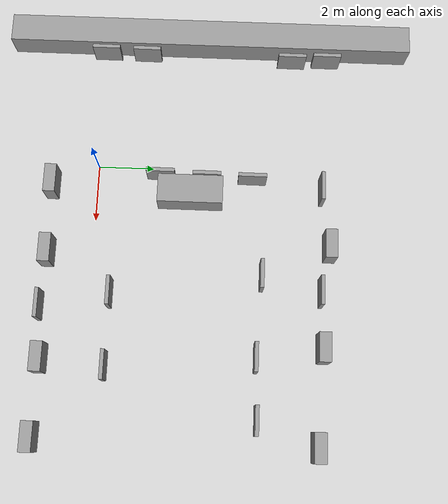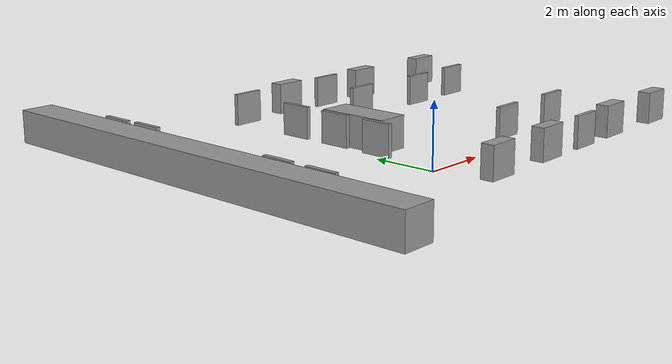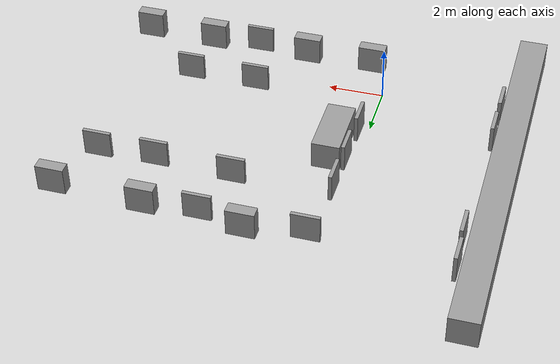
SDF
<sdf version="1.6">
 <world name="default">
  <model name="ground">
   <link name="body">
    <collision name="geom">
     <geometry><plane><normal>0 0 1</normal><size>1000 1000</size></plane></geometry>
     <surface><friction><ode><mu>100</mu><mu2>50</mu2></ode></friction></surface>
    </collision>
   </link>
   <static>1</static>
  </model>
  <model name="unit_box">
   <link name="link">
    <inertial>
     <mass>1</mass>
     <inertia>
      <ixx>0.166667</ixx>
      <ixy>0</ixy>
      <ixz>0</ixz>
      <iyy>0.166667</iyy>
      <iyz>0</iyz>
      <izz>0.166667</izz>
     </inertia>
    </inertial>
    <visual name="visual">
     <geometry><box><size>1 14.6124 1</size></box></geometry>
     <material>
      <script><name>Gazebo/Grey</name><uri>file://media/materials/scripts/gazebo.material</uri></script>
      <shader type="pixel"/>
      <ambient>0.3 0.3 0.3 1</ambient>
      <diffuse>0.7 0.7 0.7 1</diffuse>
      <specular>0.01 0.01 0.01 1</specular>
      <emissive>0 0 0 1</emissive>
     </material>
    </visual>
    <collision name="collision">
     <geometry><box><size>1 14.6124 1</size></box></geometry>
     <surface>
      <friction>
       <ode><mu>1</mu><mu2>1</mu2><fdir1>0 0 0</fdir1><slip1>0</slip1><slip2>0</slip2></ode>
       <torsional>
        <coefficient>1</coefficient>
        <patch_radius>0</patch_radius>
        <surface_radius>0</surface_radius>
        <use_patch_radius>1</use_patch_radius>
        <ode><slip>0</slip></ode>
       </torsional>
      </friction>
      <bounce><restitution_coefficient>0</restitution_coefficient><threshold>1e+06</threshold></bounce>
      <contact>
       <collide_without_contact>0</collide_without_contact>
       <collide_without_contact_bitmask>1</collide_without_contact_bitmask>
       <collide_bitmask>1</collide_bitmask>
       <ode>
        <soft_cfm>0</soft_cfm>
        <soft_erp>0.2</soft_erp>
        <kp>1e+13</kp>
        <kd>1</kd>
        <max_vel>0.01</max_vel>
        <min_depth>0</min_depth>
       </ode>
       <bullet>
        <split_impulse>1</split_impulse>
        <split_impulse_penetration_threshold>-0.01</split_impulse_penetration_threshold>
        <soft_cfm>0</soft_cfm>
        <soft_erp>0.2</soft_erp>
        <kp>1e+13</kp>
        <kd>1</kd>
       </bullet>
      </contact>
     </surface>
    </collision>
   </link>
   <static>1</static>
   <pose>-5.00918 3.85436 0.5 0 -0 0</pose>
  </model>
  <model name="unit_box_1_clone_0_clone">
   <link name="link">
    <inertial>
     <mass>1</mass>
     <inertia>
      <ixx>0.166667</ixx>
      <ixy>0</ixy>
      <ixz>0</ixz>
      <iyy>0.166667</iyy>
      <iyz>0</iyz>
      <izz>0.166667</izz>
     </inertia>
    </inertial>
    <visual name="visual">
     <geometry><box><size>1 0.413614 1</size></box></geometry>
     <material>
      <script><name>Gazebo/Grey</name><uri>file://media/materials/scripts/gazebo.material</uri></script>
      <shader type="pixel"/>
      <ambient>0.3 0.3 0.3 1</ambient>
      <diffuse>0.7 0.7 0.7 1</diffuse>
      <specular>0.01 0.01 0.01 1</specular>
      <emissive>0 0 0 1</emissive>
     </material>
    </visual>
    <collision name="collision">
     <geometry><box><size>1 0.413614 1</size></box></geometry>
     <surface>
      <friction>
       <ode><mu>1</mu><mu2>1</mu2><fdir1>0 0 0</fdir1><slip1>0</slip1><slip2>0</slip2></ode>
       <torsional>
        <coefficient>1</coefficient>
        <patch_radius>0</patch_radius>
        <surface_radius>0</surface_radius>
        <use_patch_radius>1</use_patch_radius>
        <ode><slip>0</slip></ode>
       </torsional>
      </friction>
      <bounce><restitution_coefficient>0</restitution_coefficient><threshold>1e+06</threshold></bounce>
      <contact>
       <collide_without_contact>0</collide_without_contact>
       <collide_without_contact_bitmask>1</collide_without_contact_bitmask>
       <collide_bitmask>1</collide_bitmask>
       <ode>
        <soft_cfm>0</soft_cfm>
        <soft_erp>0.2</soft_erp>
        <kp>1e+13</kp>
        <kd>1</kd>
        <max_vel>0.01</max_vel>
        <min_depth>0</min_depth>
       </ode>
       <bullet>
        <split_impulse>1</split_impulse>
        <split_impulse_penetration_threshold>-0.01</split_impulse_penetration_threshold>
        <soft_cfm>0</soft_cfm>
        <soft_erp>0.2</soft_erp>
        <kp>1e+13</kp>
        <kd>1</kd>
       </bullet>
      </contact>
     </surface>
    </collision>
   </link>
   <static>1</static>
   <pose>2.76595 8.31502 0.500033 1e-05 -0 0</pose>
  </model>
  <model name="unit_box_1_clone_0_clone_0">
   <link name="link">
    <inertial>
     <mass>1</mass>
     <inertia>
      <ixx>0.166667</ixx>
      <ixy>0</ixy>
      <ixz>0</ixz>
      <iyy>0.166667</iyy>
      <iyz>0</iyz>
      <izz>0.166667</izz>
     </inertia>
    </inertial>
    <visual name="visual">
     <geometry><box><size>1 0.413614 1</size></box></geometry>
     <material>
      <script><name>Gazebo/Grey</name><uri>file://media/materials/scripts/gazebo.material</uri></script>
      <shader type="pixel"/>
      <ambient>0.3 0.3 0.3 1</ambient>
      <diffuse>0.7 0.7 0.7 1</diffuse>
      <specular>0.01 0.01 0.01 1</specular>
      <emissive>0 0 0 1</emissive>
     </material>
    </visual>
    <collision name="collision">
     <geometry><box><size>1 0.413614 1</size></box></geometry>
     <surface>
      <friction>
       <ode><mu>1</mu><mu2>1</mu2><fdir1>0 0 0</fdir1><slip1>0</slip1><slip2>0</slip2></ode>
       <torsional>
        <coefficient>1</coefficient>
        <patch_radius>0</patch_radius>
        <surface_radius>0</surface_radius>
        <use_patch_radius>1</use_patch_radius>
        <ode><slip>0</slip></ode>
       </torsional>
      </friction>
      <bounce><restitution_coefficient>0</restitution_coefficient><threshold>1e+06</threshold></bounce>
      <contact>
       <collide_without_contact>0</collide_without_contact>
       <collide_without_contact_bitmask>1</collide_without_contact_bitmask>
       <collide_bitmask>1</collide_bitmask>
       <ode>
        <soft_cfm>0</soft_cfm>
        <soft_erp>0.2</soft_erp>
        <kp>1e+13</kp>
        <kd>1</kd>
        <max_vel>0.01</max_vel>
        <min_depth>0</min_depth>
       </ode>
       <bullet>
        <split_impulse>1</split_impulse>
        <split_impulse_penetration_threshold>-0.01</split_impulse_penetration_threshold>
        <soft_cfm>0</soft_cfm>
        <soft_erp>0.2</soft_erp>
        <kp>1e+13</kp>
        <kd>1</kd>
       </bullet>
      </contact>
     </surface>
    </collision>
   </link>
   <static>1</static>
   <pose>0.76029 -1.57543 0.500034 1e-05 -0 0</pose>
  </model>
  <model name="unit_box_1_clone_0_clone_1">
   <link name="link">
    <inertial>
     <mass>1</mass>
     <inertia>
      <ixx>0.166667</ixx>
      <ixy>0</ixy>
      <ixz>0</ixz>
      <iyy>0.166667</iyy>
      <iyz>0</iyz>
      <izz>0.166667</izz>
     </inertia>
    </inertial>
    <visual name="visual">
     <geometry><box><size>1 0.413614 1</size></box></geometry>
     <material>
      <script><name>Gazebo/Grey</name><uri>file://media/materials/scripts/gazebo.material</uri></script>
      <shader type="pixel"/>
      <ambient>0.3 0.3 0.3 1</ambient>
      <diffuse>0.7 0.7 0.7 1</diffuse>
      <specular>0.01 0.01 0.01 1</specular>
      <emissive>0 0 0 1</emissive>
     </material>
    </visual>
    <collision name="collision">
     <geometry><box><size>1 0.413614 1</size></box></geometry>
     <surface>
      <friction>
       <ode><mu>1</mu><mu2>1</mu2><fdir1>0 0 0</fdir1><slip1>0</slip1><slip2>0</slip2></ode>
       <torsional>
        <coefficient>1</coefficient>
        <patch_radius>0</patch_radius>
        <surface_radius>0</surface_radius>
        <use_patch_radius>1</use_patch_radius>
        <ode><slip>0</slip></ode>
       </torsional>
      </friction>
      <bounce><restitution_coefficient>0</restitution_coefficient><threshold>1e+06</threshold></bounce>
      <contact>
       <collide_without_contact>0</collide_without_contact>
       <collide_without_contact_bitmask>1</collide_without_contact_bitmask>
       <collide_bitmask>1</collide_bitmask>
       <ode>
        <soft_cfm>0</soft_cfm>
        <soft_erp>0.2</soft_erp>
        <kp>1e+13</kp>
        <kd>1</kd>
        <max_vel>0.01</max_vel>
        <min_depth>0</min_depth>
       </ode>
       <bullet>
        <split_impulse>1</split_impulse>
        <split_impulse_penetration_threshold>-0.01</split_impulse_penetration_threshold>
        <soft_cfm>0</soft_cfm>
        <soft_erp>0.2</soft_erp>
        <kp>1e+13</kp>
        <kd>1</kd>
       </bullet>
      </contact>
     </surface>
    </collision>
   </link>
   <static>1</static>
   <pose>3.25411 -1.54906 0.500034 1e-05 -0 0</pose>
  </model>
  <model name="unit_box_1_clone_0_clone_2">
   <link name="link">
    <inertial>
     <mass>1</mass>
     <inertia>
      <ixx>0.166667</ixx>
      <ixy>0</ixy>
      <ixz>0</ixz>
      <iyy>0.166667</iyy>
      <iyz>0</iyz>
      <izz>0.166667</izz>
     </inertia>
    </inertial>
    <visual name="visual">
     <geometry><box><size>1 0.413614 1</size></box></geometry>
     <material>
      <script><name>Gazebo/Grey</name><uri>file://media/materials/scripts/gazebo.material</uri></script>
      <shader type="pixel"/>
      <ambient>0.3 0.3 0.3 1</ambient>
      <diffuse>0.7 0.7 0.7 1</diffuse>
      <specular>0.01 0.01 0.01 1</specular>
      <emissive>0 0 0 1</emissive>
     </material>
    </visual>
    <collision name="collision">
     <geometry><box><size>1 0.413614 1</size></box></geometry>
     <surface>
      <friction>
       <ode><mu>1</mu><mu2>1</mu2><fdir1>0 0 0</fdir1><slip1>0</slip1><slip2>0</slip2></ode>
       <torsional>
        <coefficient>1</coefficient>
        <patch_radius>0</patch_radius>
        <surface_radius>0</surface_radius>
        <use_patch_radius>1</use_patch_radius>
        <ode><slip>0</slip></ode>
       </torsional>
      </friction>
      <bounce><restitution_coefficient>0</restitution_coefficient><threshold>1e+06</threshold></bounce>
      <contact>
       <collide_without_contact>0</collide_without_contact>
       <collide_without_contact_bitmask>1</collide_without_contact_bitmask>
       <collide_bitmask>1</collide_bitmask>
       <ode>
        <soft_cfm>0</soft_cfm>
        <soft_erp>0.2</soft_erp>
        <kp>1e+13</kp>
        <kd>1</kd>
        <max_vel>0.01</max_vel>
        <min_depth>0</min_depth>
       </ode>
       <bullet>
        <split_impulse>1</split_impulse>
        <split_impulse_penetration_threshold>-0.01</split_impulse_penetration_threshold>
        <soft_cfm>0</soft_cfm>
        <soft_erp>0.2</soft_erp>
        <kp>1e+13</kp>
        <kd>1</kd>
       </bullet>
      </contact>
     </surface>
    </collision>
   </link>
   <static>1</static>
   <pose>6.96561 -1.50266 0.500035 1e-05 -0 0</pose>
  </model>
  <model name="unit_box_1_clone_0_clone_3">
   <link name="link">
    <inertial>
     <mass>1</mass>
     <inertia>
      <ixx>0.166667</ixx>
      <ixy>0</ixy>
      <ixz>0</ixz>
      <iyy>0.166667</iyy>
      <iyz>0</iyz>
      <izz>0.166667</izz>
     </inertia>
    </inertial>
    <visual name="visual">
     <geometry><box><size>1 0.413614 1</size></box></geometry>
     <material>
      <script><name>Gazebo/Grey</name><uri>file://media/materials/scripts/gazebo.material</uri></script>
      <shader type="pixel"/>
      <ambient>0.3 0.3 0.3 1</ambient>
      <diffuse>0.7 0.7 0.7 1</diffuse>
      <specular>0.01 0.01 0.01 1</specular>
      <emissive>0 0 0 1</emissive>
     </material>
    </visual>
    <collision name="collision">
     <geometry><box><size>1 0.413614 1</size></box></geometry>
     <surface>
      <friction>
       <ode><mu>1</mu><mu2>1</mu2><fdir1>0 0 0</fdir1><slip1>0</slip1><slip2>0</slip2></ode>
       <torsional>
        <coefficient>1</coefficient>
        <patch_radius>0</patch_radius>
        <surface_radius>0</surface_radius>
        <use_patch_radius>1</use_patch_radius>
        <ode><slip>0</slip></ode>
       </torsional>
      </friction>
      <bounce><restitution_coefficient>0</restitution_coefficient><threshold>1e+06</threshold></bounce>
      <contact>
       <collide_without_contact>0</collide_without_contact>
       <collide_without_contact_bitmask>1</collide_without_contact_bitmask>
       <collide_bitmask>1</collide_bitmask>
       <ode>
        <soft_cfm>0</soft_cfm>
        <soft_erp>0.2</soft_erp>
        <kp>1e+13</kp>
        <kd>1</kd>
        <max_vel>0.01</max_vel>
        <min_depth>0</min_depth>
       </ode>
       <bullet>
        <split_impulse>1</split_impulse>
        <split_impulse_penetration_threshold>-0.01</split_impulse_penetration_threshold>
        <soft_cfm>0</soft_cfm>
        <soft_erp>0.2</soft_erp>
        <kp>1e+13</kp>
        <kd>1</kd>
       </bullet>
      </contact>
     </surface>
    </collision>
   </link>
   <static>1</static>
   <pose>9.54835 -1.57303 0.500034 1e-05 -0 0</pose>
  </model>
  <model name="unit_box_1_clone_0_clone_5">
   <link name="link">
    <inertial>
     <mass>1</mass>
     <inertia>
      <ixx>0.166667</ixx>
      <ixy>0</ixy>
      <ixz>0</ixz>
      <iyy>0.166667</iyy>
      <iyz>0</iyz>
      <izz>0.166667</izz>
     </inertia>
    </inertial>
    <visual name="visual">
     <geometry><box><size>1 0.413614 1</size></box></geometry>
     <material>
      <script><name>Gazebo/Grey</name><uri>file://media/materials/scripts/gazebo.material</uri></script>
      <shader type="pixel"/>
      <ambient>0.3 0.3 0.3 1</ambient>
      <diffuse>0.7 0.7 0.7 1</diffuse>
      <specular>0.01 0.01 0.01 1</specular>
      <emissive>0 0 0 1</emissive>
     </material>
    </visual>
    <collision name="collision">
     <geometry><box><size>1 0.413614 1</size></box></geometry>
     <surface>
      <friction>
       <ode><mu>1</mu><mu2>1</mu2><fdir1>0 0 0</fdir1><slip1>0</slip1><slip2>0</slip2></ode>
       <torsional>
        <coefficient>1</coefficient>
        <patch_radius>0</patch_radius>
        <surface_radius>0</surface_radius>
        <use_patch_radius>1</use_patch_radius>
        <ode><slip>0</slip></ode>
       </torsional>
      </friction>
      <bounce><restitution_coefficient>0</restitution_coefficient><threshold>1e+06</threshold></bounce>
      <contact>
       <collide_without_contact>0</collide_without_contact>
       <collide_without_contact_bitmask>1</collide_without_contact_bitmask>
       <collide_bitmask>1</collide_bitmask>
       <ode>
        <soft_cfm>0</soft_cfm>
        <soft_erp>0.2</soft_erp>
        <kp>1e+13</kp>
        <kd>1</kd>
        <max_vel>0.01</max_vel>
        <min_depth>0</min_depth>
       </ode>
       <bullet>
        <split_impulse>1</split_impulse>
        <split_impulse_penetration_threshold>-0.01</split_impulse_penetration_threshold>
        <soft_cfm>0</soft_cfm>
        <soft_erp>0.2</soft_erp>
        <kp>1e+13</kp>
        <kd>1</kd>
       </bullet>
      </contact>
     </surface>
    </collision>
   </link>
   <static>1</static>
   <pose>6.3125 8.09635 0.500032 1e-05 -0 0</pose>
  </model>
  <model name="unit_box_1_clone_0_clone_6">
   <link name="link">
    <inertial>
     <mass>1</mass>
     <inertia>
      <ixx>0.166667</ixx>
      <ixy>0</ixy>
      <ixz>0</ixz>
      <iyy>0.166667</iyy>
      <iyz>0</iyz>
      <izz>0.166667</izz>
     </inertia>
    </inertial>
    <visual name="visual">
     <geometry><box><size>1 0.413614 1</size></box></geometry>
     <material>
      <script><name>Gazebo/Grey</name><uri>file://media/materials/scripts/gazebo.material</uri></script>
      <shader type="pixel"/>
      <ambient>0.3 0.3 0.3 1</ambient>
      <diffuse>0.7 0.7 0.7 1</diffuse>
      <specular>0.01 0.01 0.01 1</specular>
      <emissive>0 0 0 1</emissive>
     </material>
    </visual>
    <collision name="collision">
     <geometry><box><size>1 0.413614 1</size></box></geometry>
     <surface>
      <friction>
       <ode><mu>1</mu><mu2>1</mu2><fdir1>0 0 0</fdir1><slip1>0</slip1><slip2>0</slip2></ode>
       <torsional>
        <coefficient>1</coefficient>
        <patch_radius>0</patch_radius>
        <surface_radius>0</surface_radius>
        <use_patch_radius>1</use_patch_radius>
        <ode><slip>0</slip></ode>
       </torsional>
      </friction>
      <bounce><restitution_coefficient>0</restitution_coefficient><threshold>1e+06</threshold></bounce>
      <contact>
       <collide_without_contact>0</collide_without_contact>
       <collide_without_contact_bitmask>1</collide_without_contact_bitmask>
       <collide_bitmask>1</collide_bitmask>
       <ode>
        <soft_cfm>0</soft_cfm>
        <soft_erp>0.2</soft_erp>
        <kp>1e+13</kp>
        <kd>1</kd>
        <max_vel>0.01</max_vel>
        <min_depth>0</min_depth>
       </ode>
       <bullet>
        <split_impulse>1</split_impulse>
        <split_impulse_penetration_threshold>-0.01</split_impulse_penetration_threshold>
        <soft_cfm>0</soft_cfm>
        <soft_erp>0.2</soft_erp>
        <kp>1e+13</kp>
        <kd>1</kd>
       </bullet>
      </contact>
     </surface>
    </collision>
   </link>
   <static>1</static>
   <pose>9.55963 7.943 0.50003 1e-05 -0 0</pose>
  </model>
  <model name="unit_box_1_clone_0_clone_16_clone">
   <link name="link">
    <inertial>
     <mass>1</mass>
     <inertia>
      <ixx>0.166667</ixx>
      <ixy>0</ixy>
      <ixz>0</ixz>
      <iyy>0.166667</iyy>
      <iyz>0</iyz>
      <izz>0.166667</izz>
     </inertia>
    </inertial>
    <visual name="visual">
     <geometry><box><size>1 0.12971 1</size></box></geometry>
     <material>
      <script><name>Gazebo/Grey</name><uri>file://media/materials/scripts/gazebo.material</uri></script>
      <shader type="pixel"/>
      <ambient>0.3 0.3 0.3 1</ambient>
      <diffuse>0.7 0.7 0.7 1</diffuse>
      <specular>0.01 0.01 0.01 1</specular>
      <emissive>0 0 0 1</emissive>
     </material>
    </visual>
    <collision name="collision">
     <geometry><box><size>1 0.12971 1</size></box></geometry>
     <surface>
      <friction>
       <ode><mu>1</mu><mu2>1</mu2><fdir1>0 0 0</fdir1><slip1>0</slip1><slip2>0</slip2></ode>
       <torsional>
        <coefficient>1</coefficient>
        <patch_radius>0</patch_radius>
        <surface_radius>0</surface_radius>
        <use_patch_radius>1</use_patch_radius>
        <ode><slip>0</slip></ode>
       </torsional>
      </friction>
      <bounce><restitution_coefficient>0</restitution_coefficient><threshold>1e+06</threshold></bounce>
      <contact>
       <collide_without_contact>0</collide_without_contact>
       <collide_without_contact_bitmask>1</collide_without_contact_bitmask>
       <collide_bitmask>1</collide_bitmask>
       <ode>
        <soft_cfm>0</soft_cfm>
        <soft_erp>0.2</soft_erp>
        <kp>1e+13</kp>
        <kd>1</kd>
        <max_vel>0.01</max_vel>
        <min_depth>0</min_depth>
       </ode>
       <bullet>
        <split_impulse>1</split_impulse>
        <split_impulse_penetration_threshold>-0.01</split_impulse_penetration_threshold>
        <soft_cfm>0</soft_cfm>
        <soft_erp>0.2</soft_erp>
        <kp>1e+13</kp>
        <kd>1</kd>
       </bullet>
      </contact>
     </surface>
    </collision>
   </link>
   <static>1</static>
   <pose>5.17154 -1.66149 0.500002 1e-05 -0 0</pose>
  </model>
  <model name="unit_box_1_clone_0_clone_16_clone_10">
   <link name="link">
    <inertial>
     <mass>1</mass>
     <inertia>
      <ixx>0.166667</ixx>
      <ixy>0</ixy>
      <ixz>0</ixz>
      <iyy>0.166667</iyy>
      <iyz>0</iyz>
      <izz>0.166667</izz>
     </inertia>
    </inertial>
    <visual name="visual">
     <geometry><box><size>1 0.12971 1</size></box></geometry>
     <material>
      <script><name>Gazebo/Grey</name><uri>file://media/materials/scripts/gazebo.material</uri></script>
      <shader type="pixel"/>
      <ambient>0.3 0.3 0.3 1</ambient>
      <diffuse>0.7 0.7 0.7 1</diffuse>
      <specular>0.01 0.01 0.01 1</specular>
      <emissive>0 0 0 1</emissive>
     </material>
    </visual>
    <collision name="collision">
     <geometry><box><size>1 0.12971 1</size></box></geometry>
     <surface>
      <friction>
       <ode><mu>1</mu><mu2>1</mu2><fdir1>0 0 0</fdir1><slip1>0</slip1><slip2>0</slip2></ode>
       <torsional>
        <coefficient>1</coefficient>
        <patch_radius>0</patch_radius>
        <surface_radius>0</surface_radius>
        <use_patch_radius>1</use_patch_radius>
        <ode><slip>0</slip></ode>
       </torsional>
      </friction>
      <bounce><restitution_coefficient>0</restitution_coefficient><threshold>1e+06</threshold></bounce>
      <contact>
       <collide_without_contact>0</collide_without_contact>
       <collide_without_contact_bitmask>1</collide_without_contact_bitmask>
       <collide_bitmask>1</collide_bitmask>
       <ode>
        <soft_cfm>0</soft_cfm>
        <soft_erp>0.2</soft_erp>
        <kp>1e+13</kp>
        <kd>1</kd>
        <max_vel>0.01</max_vel>
        <min_depth>0</min_depth>
       </ode>
       <bullet>
        <split_impulse>1</split_impulse>
        <split_impulse_penetration_threshold>-0.01</split_impulse_penetration_threshold>
        <soft_cfm>0</soft_cfm>
        <soft_erp>0.2</soft_erp>
        <kp>1e+13</kp>
        <kd>1</kd>
       </bullet>
      </contact>
     </surface>
    </collision>
   </link>
   <static>1</static>
   <pose>4.39016 8.01505 0.499997 1e-05 -0 0</pose>
  </model>
  <model name="unit_box_1_clone_0_clone_16_clone_11">
   <link name="link">
    <inertial>
     <mass>1</mass>
     <inertia>
      <ixx>0.166667</ixx>
      <ixy>0</ixy>
      <ixz>0</ixz>
      <iyy>0.166667</iyy>
      <iyz>0</iyz>
      <izz>0.166667</izz>
     </inertia>
    </inertial>
    <visual name="visual">
     <geometry><box><size>1 0.12971 1</size></box></geometry>
     <material>
      <script><name>Gazebo/Grey</name><uri>file://media/materials/scripts/gazebo.material</uri></script>
      <shader type="pixel"/>
      <ambient>0.3 0.3 0.3 1</ambient>
      <diffuse>0.7 0.7 0.7 1</diffuse>
      <specular>0.01 0.01 0.01 1</specular>
      <emissive>0 0 0 1</emissive>
     </material>
    </visual>
    <collision name="collision">
     <geometry><box><size>1 0.12971 1</size></box></geometry>
     <surface>
      <friction>
       <ode><mu>1</mu><mu2>1</mu2><fdir1>0 0 0</fdir1><slip1>0</slip1><slip2>0</slip2></ode>
       <torsional>
        <coefficient>1</coefficient>
        <patch_radius>0</patch_radius>
        <surface_radius>0</surface_radius>
        <use_patch_radius>1</use_patch_radius>
        <ode><slip>0</slip></ode>
       </torsional>
      </friction>
      <bounce><restitution_coefficient>0</restitution_coefficient><threshold>1e+06</threshold></bounce>
      <contact>
       <collide_without_contact>0</collide_without_contact>
       <collide_without_contact_bitmask>1</collide_without_contact_bitmask>
       <collide_bitmask>1</collide_bitmask>
       <ode>
        <soft_cfm>0</soft_cfm>
        <soft_erp>0.2</soft_erp>
        <kp>1e+13</kp>
        <kd>1</kd>
        <max_vel>0.01</max_vel>
        <min_depth>0</min_depth>
       </ode>
       <bullet>
        <split_impulse>1</split_impulse>
        <split_impulse_penetration_threshold>-0.01</split_impulse_penetration_threshold>
        <soft_cfm>0</soft_cfm>
        <soft_erp>0.2</soft_erp>
        <kp>1e+13</kp>
        <kd>1</kd>
       </bullet>
      </contact>
     </surface>
    </collision>
   </link>
   <static>1</static>
   <pose>0.69566 8.0281 0.499998 1e-05 -0 0</pose>
  </model>
  <model name="unit_box_1_clone_0_clone_16_clone_12">
   <link name="link">
    <inertial>
     <mass>1</mass>
     <inertia>
      <ixx>0.166667</ixx>
      <ixy>0</ixy>
      <ixz>0</ixz>
      <iyy>0.166667</iyy>
      <iyz>0</iyz>
      <izz>0.166667</izz>
     </inertia>
    </inertial>
    <visual name="visual">
     <geometry><box><size>1 0.12971 1</size></box></geometry>
     <material>
      <script><name>Gazebo/Grey</name><uri>file://media/materials/scripts/gazebo.material</uri></script>
      <shader type="pixel"/>
      <ambient>0.3 0.3 0.3 1</ambient>
      <diffuse>0.7 0.7 0.7 1</diffuse>
      <specular>0.01 0.01 0.01 1</specular>
      <emissive>0 0 0 1</emissive>
     </material>
    </visual>
    <collision name="collision">
     <geometry><box><size>1 0.12971 1</size></box></geometry>
     <surface>
      <friction>
       <ode><mu>1</mu><mu2>1</mu2><fdir1>0 0 0</fdir1><slip1>0</slip1><slip2>0</slip2></ode>
       <torsional>
        <coefficient>1</coefficient>
        <patch_radius>0</patch_radius>
        <surface_radius>0</surface_radius>
        <use_patch_radius>1</use_patch_radius>
        <ode><slip>0</slip></ode>
       </torsional>
      </friction>
      <bounce><restitution_coefficient>0</restitution_coefficient><threshold>1e+06</threshold></bounce>
      <contact>
       <collide_without_contact>0</collide_without_contact>
       <collide_without_contact_bitmask>1</collide_without_contact_bitmask>
       <collide_bitmask>1</collide_bitmask>
       <ode>
        <soft_cfm>0</soft_cfm>
        <soft_erp>0.2</soft_erp>
        <kp>1e+13</kp>
        <kd>1</kd>
        <max_vel>0.01</max_vel>
        <min_depth>0</min_depth>
       </ode>
       <bullet>
        <split_impulse>1</split_impulse>
        <split_impulse_penetration_threshold>-0.01</split_impulse_penetration_threshold>
        <soft_cfm>0</soft_cfm>
        <soft_erp>0.2</soft_erp>
        <kp>1e+13</kp>
        <kd>1</kd>
       </bullet>
      </contact>
     </surface>
    </collision>
   </link>
   <static>1</static>
   <pose>-4.23907 6.88956 0.500027 0 1e-05 -1.57561</pose>
  </model>
  <model name="unit_box_1_clone_0_clone_16_clone_12_clone">
   <link name="link">
    <inertial>
     <mass>1</mass>
     <inertia>
      <ixx>0.166667</ixx>
      <ixy>0</ixy>
      <ixz>0</ixz>
      <iyy>0.166667</iyy>
      <iyz>0</iyz>
      <izz>0.166667</izz>
     </inertia>
    </inertial>
    <visual name="visual">
     <geometry><box><size>1 0.12971 1</size></box></geometry>
     <material>
      <script><name>Gazebo/Grey</name><uri>file://media/materials/scripts/gazebo.material</uri></script>
      <shader type="pixel"/>
      <ambient>0.3 0.3 0.3 1</ambient>
      <diffuse>0.7 0.7 0.7 1</diffuse>
      <specular>0.01 0.01 0.01 1</specular>
      <emissive>0 0 0 1</emissive>
     </material>
    </visual>
    <collision name="collision">
     <geometry><box><size>1 0.12971 1</size></box></geometry>
     <surface>
      <friction>
       <ode><mu>1</mu><mu2>1</mu2><fdir1>0 0 0</fdir1><slip1>0</slip1><slip2>0</slip2></ode>
       <torsional>
        <coefficient>1</coefficient>
        <patch_radius>0</patch_radius>
        <surface_radius>0</surface_radius>
        <use_patch_radius>1</use_patch_radius>
        <ode><slip>0</slip></ode>
       </torsional>
      </friction>
      <bounce><restitution_coefficient>0</restitution_coefficient><threshold>1e+06</threshold></bounce>
      <contact>
       <collide_without_contact>0</collide_without_contact>
       <collide_without_contact_bitmask>1</collide_without_contact_bitmask>
       <collide_bitmask>1</collide_bitmask>
       <ode>
        <soft_cfm>0</soft_cfm>
        <soft_erp>0.2</soft_erp>
        <kp>1e+13</kp>
        <kd>1</kd>
        <max_vel>0.01</max_vel>
        <min_depth>0</min_depth>
       </ode>
       <bullet>
        <split_impulse>1</split_impulse>
        <split_impulse_penetration_threshold>-0.01</split_impulse_penetration_threshold>
        <soft_cfm>0</soft_cfm>
        <soft_erp>0.2</soft_erp>
        <kp>1e+13</kp>
        <kd>1</kd>
       </bullet>
      </contact>
     </surface>
    </collision>
   </link>
   <static>1</static>
   <pose>-4.35855 0.063122 0.500027 0 1e-05 -1.57561</pose>
  </model>
  <model name="unit_box_1_clone_0_clone_16_clone_12_clone_6">
   <link name="link">
    <inertial>
     <mass>1</mass>
     <inertia>
      <ixx>0.166667</ixx>
      <ixy>0</ixy>
      <ixz>0</ixz>
      <iyy>0.166667</iyy>
      <iyz>0</iyz>
      <izz>0.166667</izz>
     </inertia>
    </inertial>
    <visual name="visual">
     <geometry><box><size>1 0.12971 1</size></box></geometry>
     <material>
      <script><name>Gazebo/Grey</name><uri>file://media/materials/scripts/gazebo.material</uri></script>
      <shader type="pixel"/>
      <ambient>0.3 0.3 0.3 1</ambient>
      <diffuse>0.7 0.7 0.7 1</diffuse>
      <specular>0.01 0.01 0.01 1</specular>
      <emissive>0 0 0 1</emissive>
     </material>
    </visual>
    <collision name="collision">
     <geometry><box><size>1 0.12971 1</size></box></geometry>
     <surface>
      <friction>
       <ode><mu>1</mu><mu2>1</mu2><fdir1>0 0 0</fdir1><slip1>0</slip1><slip2>0</slip2></ode>
       <torsional>
        <coefficient>1</coefficient>
        <patch_radius>0</patch_radius>
        <surface_radius>0</surface_radius>
        <use_patch_radius>1</use_patch_radius>
        <ode><slip>0</slip></ode>
       </torsional>
      </friction>
      <bounce><restitution_coefficient>0</restitution_coefficient><threshold>1e+06</threshold></bounce>
      <contact>
       <collide_without_contact>0</collide_without_contact>
       <collide_without_contact_bitmask>1</collide_without_contact_bitmask>
       <collide_bitmask>1</collide_bitmask>
       <ode>
        <soft_cfm>0</soft_cfm>
        <soft_erp>0.2</soft_erp>
        <kp>1e+13</kp>
        <kd>1</kd>
        <max_vel>0.01</max_vel>
        <min_depth>0</min_depth>
       </ode>
       <bullet>
        <split_impulse>1</split_impulse>
        <split_impulse_penetration_threshold>-0.01</split_impulse_penetration_threshold>
        <soft_cfm>0</soft_cfm>
        <soft_erp>0.2</soft_erp>
        <kp>1e+13</kp>
        <kd>1</kd>
       </bullet>
      </contact>
     </surface>
    </collision>
   </link>
   <static>1</static>
   <pose>-4.34072 1.5573 0.500027 0 1e-05 -1.57561</pose>
  </model>
  <model name="unit_box_1_clone_0_clone_16_clone_12_clone_7">
   <link name="link">
    <inertial>
     <mass>1</mass>
     <inertia>
      <ixx>0.166667</ixx>
      <ixy>0</ixy>
      <ixz>0</ixz>
      <iyy>0.166667</iyy>
      <iyz>0</iyz>
      <izz>0.166667</izz>
     </inertia>
    </inertial>
    <visual name="visual">
     <geometry><box><size>1 0.12971 1</size></box></geometry>
     <material>
      <script><name>Gazebo/Grey</name><uri>file://media/materials/scripts/gazebo.material</uri></script>
      <shader type="pixel"/>
      <ambient>0.3 0.3 0.3 1</ambient>
      <diffuse>0.7 0.7 0.7 1</diffuse>
      <specular>0.01 0.01 0.01 1</specular>
      <emissive>0 0 0 1</emissive>
     </material>
    </visual>
    <collision name="collision">
     <geometry><box><size>1 0.12971 1</size></box></geometry>
     <surface>
      <friction>
       <ode><mu>1</mu><mu2>1</mu2><fdir1>0 0 0</fdir1><slip1>0</slip1><slip2>0</slip2></ode>
       <torsional>
        <coefficient>1</coefficient>
        <patch_radius>0</patch_radius>
        <surface_radius>0</surface_radius>
        <use_patch_radius>1</use_patch_radius>
        <ode><slip>0</slip></ode>
       </torsional>
      </friction>
      <bounce><restitution_coefficient>0</restitution_coefficient><threshold>1e+06</threshold></bounce>
      <contact>
       <collide_without_contact>0</collide_without_contact>
       <collide_without_contact_bitmask>1</collide_without_contact_bitmask>
       <collide_bitmask>1</collide_bitmask>
       <ode>
        <soft_cfm>0</soft_cfm>
        <soft_erp>0.2</soft_erp>
        <kp>1e+13</kp>
        <kd>1</kd>
        <max_vel>0.01</max_vel>
        <min_depth>0</min_depth>
       </ode>
       <bullet>
        <split_impulse>1</split_impulse>
        <split_impulse_penetration_threshold>-0.01</split_impulse_penetration_threshold>
        <soft_cfm>0</soft_cfm>
        <soft_erp>0.2</soft_erp>
        <kp>1e+13</kp>
        <kd>1</kd>
       </bullet>
      </contact>
     </surface>
    </collision>
   </link>
   <static>1</static>
   <pose>-4.29281 8.15916 0.500027 0 1e-05 -1.57561</pose>
  </model>
  <model name="unit_box_1_clone_0_clone_10_clone_clone">
   <link name="link">
    <inertial>
     <mass>1</mass>
     <inertia>
      <ixx>0.166667</ixx>
      <ixy>0</ixy>
      <ixz>0</ixz>
      <iyy>0.166667</iyy>
      <iyz>0</iyz>
      <izz>0.166667</izz>
     </inertia>
    </inertial>
    <visual name="visual">
     <geometry><box><size>1 2.2871 1</size></box></geometry>
     <material>
      <script><name>Gazebo/Grey</name><uri>file://media/materials/scripts/gazebo.material</uri></script>
      <shader type="pixel"/>
      <ambient>0.3 0.3 0.3 1</ambient>
      <diffuse>0.7 0.7 0.7 1</diffuse>
      <specular>0.01 0.01 0.01 1</specular>
      <emissive>0 0 0 1</emissive>
     </material>
    </visual>
    <collision name="collision">
     <geometry><box><size>1 2.2871 1</size></box></geometry>
     <surface>
      <friction>
       <ode><mu>1</mu><mu2>1</mu2><fdir1>0 0 0</fdir1><slip1>0</slip1><slip2>0</slip2></ode>
       <torsional>
        <coefficient>1</coefficient>
        <patch_radius>0</patch_radius>
        <surface_radius>0</surface_radius>
        <use_patch_radius>1</use_patch_radius>
        <ode><slip>0</slip></ode>
       </torsional>
      </friction>
      <bounce><restitution_coefficient>0</restitution_coefficient><threshold>1e+06</threshold></bounce>
      <contact>
       <collide_without_contact>0</collide_without_contact>
       <collide_without_contact_bitmask>1</collide_without_contact_bitmask>
       <collide_bitmask>1</collide_bitmask>
       <ode>
        <soft_cfm>0</soft_cfm>
        <soft_erp>0.2</soft_erp>
        <kp>1e+13</kp>
        <kd>1</kd>
        <max_vel>0.01</max_vel>
        <min_depth>0</min_depth>
       </ode>
       <bullet>
        <split_impulse>1</split_impulse>
        <split_impulse_penetration_threshold>-0.01</split_impulse_penetration_threshold>
        <soft_cfm>0</soft_cfm>
        <soft_erp>0.2</soft_erp>
        <kp>1e+13</kp>
        <kd>1</kd>
       </bullet>
      </contact>
     </surface>
    </collision>
   </link>
   <static>1</static>
   <pose>0.983844 3.36384 0.500032 1e-05 -0 0</pose>
  </model>
  <model name="unit_box_1_clone_0_clone_16_clone_3_clone_4">
   <link name="link">
    <inertial>
     <mass>1</mass>
     <inertia>
      <ixx>0.166667</ixx>
      <ixy>0</ixy>
      <ixz>0</ixz>
      <iyy>0.166667</iyy>
      <iyz>0</iyz>
      <izz>0.166667</izz>
     </inertia>
    </inertial>
    <visual name="visual">
     <geometry><box><size>1 0.12971 1</size></box></geometry>
     <material>
      <script><name>Gazebo/Grey</name><uri>file://media/materials/scripts/gazebo.material</uri></script>
      <shader type="pixel"/>
      <ambient>0.3 0.3 0.3 1</ambient>
      <diffuse>0.7 0.7 0.7 1</diffuse>
      <specular>0.01 0.01 0.01 1</specular>
      <emissive>0 0 0 1</emissive>
     </material>
    </visual>
    <collision name="collision">
     <geometry><box><size>1 0.12971 1</size></box></geometry>
     <surface>
      <friction>
       <ode><mu>1</mu><mu2>1</mu2><fdir1>0 0 0</fdir1><slip1>0</slip1><slip2>0</slip2></ode>
       <torsional>
        <coefficient>1</coefficient>
        <patch_radius>0</patch_radius>
        <surface_radius>0</surface_radius>
        <use_patch_radius>1</use_patch_radius>
        <ode><slip>0</slip></ode>
       </torsional>
      </friction>
      <bounce><restitution_coefficient>0</restitution_coefficient><threshold>1e+06</threshold></bounce>
      <contact>
       <collide_without_contact>0</collide_without_contact>
       <collide_without_contact_bitmask>1</collide_without_contact_bitmask>
       <collide_bitmask>1</collide_bitmask>
       <ode>
        <soft_cfm>0</soft_cfm>
        <soft_erp>0.2</soft_erp>
        <kp>1e+13</kp>
        <kd>1</kd>
        <max_vel>0.01</max_vel>
        <min_depth>0</min_depth>
       </ode>
       <bullet>
        <split_impulse>1</split_impulse>
        <split_impulse_penetration_threshold>-0.01</split_impulse_penetration_threshold>
        <soft_cfm>0</soft_cfm>
        <soft_erp>0.2</soft_erp>
        <kp>1e+13</kp>
        <kd>1</kd>
       </bullet>
      </contact>
     </surface>
    </collision>
   </link>
   <static>1</static>
   <pose>4.65752 0.72333 0.5 1e-05 -0 0</pose>
  </model>
  <model name="unit_box_1_clone_0_clone_16_clone_3_clone_5">
   <link name="link">
    <inertial>
     <mass>1</mass>
     <inertia>
      <ixx>0.166667</ixx>
      <ixy>0</ixy>
      <ixz>0</ixz>
      <iyy>0.166667</iyy>
      <iyz>0</iyz>
      <izz>0.166667</izz>
     </inertia>
    </inertial>
    <visual name="visual">
     <geometry><box><size>1 0.12971 1</size></box></geometry>
     <material>
      <script><name>Gazebo/Grey</name><uri>file://media/materials/scripts/gazebo.material</uri></script>
      <shader type="pixel"/>
      <ambient>0.3 0.3 0.3 1</ambient>
      <diffuse>0.7 0.7 0.7 1</diffuse>
      <specular>0.01 0.01 0.01 1</specular>
      <emissive>0 0 0 1</emissive>
     </material>
    </visual>
    <collision name="collision">
     <geometry><box><size>1 0.12971 1</size></box></geometry>
     <surface>
      <friction>
       <ode><mu>1</mu><mu2>1</mu2><fdir1>0 0 0</fdir1><slip1>0</slip1><slip2>0</slip2></ode>
       <torsional>
        <coefficient>1</coefficient>
        <patch_radius>0</patch_radius>
        <surface_radius>0</surface_radius>
        <use_patch_radius>1</use_patch_radius>
        <ode><slip>0</slip></ode>
       </torsional>
      </friction>
      <bounce><restitution_coefficient>0</restitution_coefficient><threshold>1e+06</threshold></bounce>
      <contact>
       <collide_without_contact>0</collide_without_contact>
       <collide_without_contact_bitmask>1</collide_without_contact_bitmask>
       <collide_bitmask>1</collide_bitmask>
       <ode>
        <soft_cfm>0</soft_cfm>
        <soft_erp>0.2</soft_erp>
        <kp>1e+13</kp>
        <kd>1</kd>
        <max_vel>0.01</max_vel>
        <min_depth>0</min_depth>
       </ode>
       <bullet>
        <split_impulse>1</split_impulse>
        <split_impulse_penetration_threshold>-0.01</split_impulse_penetration_threshold>
        <soft_cfm>0</soft_cfm>
        <soft_erp>0.2</soft_erp>
        <kp>1e+13</kp>
        <kd>1</kd>
       </bullet>
      </contact>
     </surface>
    </collision>
   </link>
   <static>1</static>
   <pose>3.89447 5.9547 0.500001 1e-05 -0 0</pose>
  </model>
  <model name="unit_box_1_clone_0_clone_16_clone_3_clone_6">
   <link name="link">
    <inertial>
     <mass>1</mass>
     <inertia>
      <ixx>0.166667</ixx>
      <ixy>0</ixy>
      <ixz>0</ixz>
      <iyy>0.166667</iyy>
      <iyz>0</iyz>
      <izz>0.166667</izz>
     </inertia>
    </inertial>
    <visual name="visual">
     <geometry><box><size>1 0.12971 1</size></box></geometry>
     <material>
      <script><name>Gazebo/Grey</name><uri>file://media/materials/scripts/gazebo.material</uri></script>
      <shader type="pixel"/>
      <ambient>0.3 0.3 0.3 1</ambient>
      <diffuse>0.7 0.7 0.7 1</diffuse>
      <specular>0.01 0.01 0.01 1</specular>
      <emissive>0 0 0 1</emissive>
     </material>
    </visual>
    <collision name="collision">
     <geometry><box><size>1 0.12971 1</size></box></geometry>
     <surface>
      <friction>
       <ode><mu>1</mu><mu2>1</mu2><fdir1>0 0 0</fdir1><slip1>0</slip1><slip2>0</slip2></ode>
       <torsional>
        <coefficient>1</coefficient>
        <patch_radius>0</patch_radius>
        <surface_radius>0</surface_radius>
        <use_patch_radius>1</use_patch_radius>
        <ode><slip>0</slip></ode>
       </torsional>
      </friction>
      <bounce><restitution_coefficient>0</restitution_coefficient><threshold>1e+06</threshold></bounce>
      <contact>
       <collide_without_contact>0</collide_without_contact>
       <collide_without_contact_bitmask>1</collide_without_contact_bitmask>
       <collide_bitmask>1</collide_bitmask>
       <ode>
        <soft_cfm>0</soft_cfm>
        <soft_erp>0.2</soft_erp>
        <kp>1e+13</kp>
        <kd>1</kd>
        <max_vel>0.01</max_vel>
        <min_depth>0</min_depth>
       </ode>
       <bullet>
        <split_impulse>1</split_impulse>
        <split_impulse_penetration_threshold>-0.01</split_impulse_penetration_threshold>
        <soft_cfm>0</soft_cfm>
        <soft_erp>0.2</soft_erp>
        <kp>1e+13</kp>
        <kd>1</kd>
       </bullet>
      </contact>
     </surface>
    </collision>
   </link>
   <static>1</static>
   <pose>6.71373 5.81759 0.5 1e-05 -0 0</pose>
  </model>
  <model name="unit_box_1_clone_0_clone_16_clone_3_clone_7">
   <link name="link">
    <inertial>
     <mass>1</mass>
     <inertia>
      <ixx>0.166667</ixx>
      <ixy>0</ixy>
      <ixz>0</ixz>
      <iyy>0.166667</iyy>
      <iyz>0</iyz>
      <izz>0.166667</izz>
     </inertia>
    </inertial>
    <visual name="visual">
     <geometry><box><size>1 0.12971 1</size></box></geometry>
     <material>
      <script><name>Gazebo/Grey</name><uri>file://media/materials/scripts/gazebo.material</uri></script>
      <shader type="pixel"/>
      <ambient>0.3 0.3 0.3 1</ambient>
      <diffuse>0.7 0.7 0.7 1</diffuse>
      <specular>0.01 0.01 0.01 1</specular>
      <emissive>0 0 0 1</emissive>
     </material>
    </visual>
    <collision name="collision">
     <geometry><box><size>1 0.12971 1</size></box></geometry>
     <surface>
      <friction>
       <ode><mu>1</mu><mu2>1</mu2><fdir1>0 0 0</fdir1><slip1>0</slip1><slip2>0</slip2></ode>
       <torsional>
        <coefficient>1</coefficient>
        <patch_radius>0</patch_radius>
        <surface_radius>0</surface_radius>
        <use_patch_radius>1</use_patch_radius>
        <ode><slip>0</slip></ode>
       </torsional>
      </friction>
      <bounce><restitution_coefficient>0</restitution_coefficient><threshold>1e+06</threshold></bounce>
      <contact>
       <collide_without_contact>0</collide_without_contact>
       <collide_without_contact_bitmask>1</collide_without_contact_bitmask>
       <collide_bitmask>1</collide_bitmask>
       <ode>
        <soft_cfm>0</soft_cfm>
        <soft_erp>0.2</soft_erp>
        <kp>1e+13</kp>
        <kd>1</kd>
        <max_vel>0.01</max_vel>
        <min_depth>0</min_depth>
       </ode>
       <bullet>
        <split_impulse>1</split_impulse>
        <split_impulse_penetration_threshold>-0.01</split_impulse_penetration_threshold>
        <soft_cfm>0</soft_cfm>
        <soft_erp>0.2</soft_erp>
        <kp>1e+13</kp>
        <kd>1</kd>
       </bullet>
      </contact>
     </surface>
    </collision>
   </link>
   <static>1</static>
   <pose>8.77362 5.87914 0.500001 1e-05 -0 0</pose>
  </model>
  <model name="unit_box_1_clone_0_clone_16_clone_3_clone_15">
   <link name="link">
    <inertial>
     <mass>1</mass>
     <inertia>
      <ixx>0.166667</ixx>
      <ixy>0</ixy>
      <ixz>0</ixz>
      <iyy>0.166667</iyy>
      <iyz>0</iyz>
      <izz>0.166667</izz>
     </inertia>
    </inertial>
    <visual name="visual">
     <geometry><box><size>1 0.12971 1</size></box></geometry>
     <material>
      <script><name>Gazebo/Grey</name><uri>file://media/materials/scripts/gazebo.material</uri></script>
      <shader type="pixel"/>
      <ambient>0.3 0.3 0.3 1</ambient>
      <diffuse>0.7 0.7 0.7 1</diffuse>
      <specular>0.01 0.01 0.01 1</specular>
      <emissive>0 0 0 1</emissive>
     </material>
    </visual>
    <collision name="collision">
     <geometry><box><size>1 0.12971 1</size></box></geometry>
     <surface>
      <friction>
       <ode><mu>1</mu><mu2>1</mu2><fdir1>0 0 0</fdir1><slip1>0</slip1><slip2>0</slip2></ode>
       <torsional>
        <coefficient>1</coefficient>
        <patch_radius>0</patch_radius>
        <surface_radius>0</surface_radius>
        <use_patch_radius>1</use_patch_radius>
        <ode><slip>0</slip></ode>
       </torsional>
      </friction>
      <bounce><restitution_coefficient>0</restitution_coefficient><threshold>1e+06</threshold></bounce>
      <contact>
       <collide_without_contact>0</collide_without_contact>
       <collide_without_contact_bitmask>1</collide_without_contact_bitmask>
       <collide_bitmask>1</collide_bitmask>
       <ode>
        <soft_cfm>0</soft_cfm>
        <soft_erp>0.2</soft_erp>
        <kp>1e+13</kp>
        <kd>1</kd>
        <max_vel>0.01</max_vel>
        <min_depth>0</min_depth>
       </ode>
       <bullet>
        <split_impulse>1</split_impulse>
        <split_impulse_penetration_threshold>-0.01</split_impulse_penetration_threshold>
        <soft_cfm>0</soft_cfm>
        <soft_erp>0.2</soft_erp>
        <kp>1e+13</kp>
        <kd>1</kd>
       </bullet>
      </contact>
     </surface>
    </collision>
   </link>
   <static>1</static>
   <pose>7.14679 0.704559 0.5 1e-05 -0 0</pose>
  </model>
  <model name="unit_box_1_clone_0_clone_16_clone_12_clone_8">
   <link name="link">
    <inertial>
     <mass>1</mass>
     <inertia>
      <ixx>0.166667</ixx>
      <ixy>0</ixy>
      <ixz>0</ixz>
      <iyy>0.166667</iyy>
      <iyz>0</iyz>
      <izz>0.166667</izz>
     </inertia>
    </inertial>
    <visual name="visual">
     <geometry><box><size>1 0.12971 1</size></box></geometry>
     <material>
      <script><name>Gazebo/Grey</name><uri>file://media/materials/scripts/gazebo.material</uri></script>
      <shader type="pixel"/>
      <ambient>0.3 0.3 0.3 1</ambient>
      <diffuse>0.7 0.7 0.7 1</diffuse>
      <specular>0.01 0.01 0.01 1</specular>
      <emissive>0 0 0 1</emissive>
     </material>
    </visual>
    <collision name="collision">
     <geometry><box><size>1 0.12971 1</size></box></geometry>
     <surface>
      <friction>
       <ode><mu>1</mu><mu2>1</mu2><fdir1>0 0 0</fdir1><slip1>0</slip1><slip2>0</slip2></ode>
       <torsional>
        <coefficient>1</coefficient>
        <patch_radius>0</patch_radius>
        <surface_radius>0</surface_radius>
        <use_patch_radius>1</use_patch_radius>
        <ode><slip>0</slip></ode>
       </torsional>
      </friction>
      <bounce><restitution_coefficient>0</restitution_coefficient><threshold>1e+06</threshold></bounce>
      <contact>
       <collide_without_contact>0</collide_without_contact>
       <collide_without_contact_bitmask>1</collide_without_contact_bitmask>
       <collide_bitmask>1</collide_bitmask>
       <ode>
        <soft_cfm>0</soft_cfm>
        <soft_erp>0.2</soft_erp>
        <kp>1e+13</kp>
        <kd>1</kd>
        <max_vel>0.01</max_vel>
        <min_depth>0</min_depth>
       </ode>
       <bullet>
        <split_impulse>1</split_impulse>
        <split_impulse_penetration_threshold>-0.01</split_impulse_penetration_threshold>
        <soft_cfm>0</soft_cfm>
        <soft_erp>0.2</soft_erp>
        <kp>1e+13</kp>
        <kd>1</kd>
       </bullet>
      </contact>
     </surface>
    </collision>
   </link>
   <static>1</static>
   <pose>0.407897 5.54414 0.500027 0 1e-05 -1.57561</pose>
  </model>
  <model name="unit_box_1_clone_0_clone_16_clone_12_clone_9">
   <link name="link">
    <inertial>
     <mass>1</mass>
     <inertia>
      <ixx>0.166667</ixx>
      <ixy>0</ixy>
      <ixz>0</ixz>
      <iyy>0.166667</iyy>
      <iyz>0</iyz>
      <izz>0.166667</izz>
     </inertia>
    </inertial>
    <visual name="visual">
     <geometry><box><size>1 0.12971 1</size></box></geometry>
     <material>
      <script><name>Gazebo/Grey</name><uri>file://media/materials/scripts/gazebo.material</uri></script>
      <shader type="pixel"/>
      <ambient>0.3 0.3 0.3 1</ambient>
      <diffuse>0.7 0.7 0.7 1</diffuse>
      <specular>0.01 0.01 0.01 1</specular>
      <emissive>0 0 0 1</emissive>
     </material>
    </visual>
    <collision name="collision">
     <geometry><box><size>1 0.12971 1</size></box></geometry>
     <surface>
      <friction>
       <ode><mu>1</mu><mu2>1</mu2><fdir1>0 0 0</fdir1><slip1>0</slip1><slip2>0</slip2></ode>
       <torsional>
        <coefficient>1</coefficient>
        <patch_radius>0</patch_radius>
        <surface_radius>0</surface_radius>
        <use_patch_radius>1</use_patch_radius>
        <ode><slip>0</slip></ode>
       </torsional>
      </friction>
      <bounce><restitution_coefficient>0</restitution_coefficient><threshold>1e+06</threshold></bounce>
      <contact>
       <collide_without_contact>0</collide_without_contact>
       <collide_without_contact_bitmask>1</collide_without_contact_bitmask>
       <collide_bitmask>1</collide_bitmask>
       <ode>
        <soft_cfm>0</soft_cfm>
        <soft_erp>0.2</soft_erp>
        <kp>1e+13</kp>
        <kd>1</kd>
        <max_vel>0.01</max_vel>
        <min_depth>0</min_depth>
       </ode>
       <bullet>
        <split_impulse>1</split_impulse>
        <split_impulse_penetration_threshold>-0.01</split_impulse_penetration_threshold>
        <soft_cfm>0</soft_cfm>
        <soft_erp>0.2</soft_erp>
        <kp>1e+13</kp>
        <kd>1</kd>
       </bullet>
      </contact>
     </surface>
    </collision>
   </link>
   <static>1</static>
   <pose>0.381279 3.93222 0.500027 0 1e-05 -1.57561</pose>
  </model>
  <model name="unit_box_1_clone_0_clone_16_clone_12_clone_10">
   <link name="link">
    <inertial>
     <mass>1</mass>
     <inertia>
      <ixx>0.166667</ixx>
      <ixy>0</ixy>
      <ixz>0</ixz>
      <iyy>0.166667</iyy>
      <iyz>0</iyz>
      <izz>0.166667</izz>
     </inertia>
    </inertial>
    <visual name="visual">
     <geometry><box><size>1 0.12971 1</size></box></geometry>
     <material>
      <script><name>Gazebo/Grey</name><uri>file://media/materials/scripts/gazebo.material</uri></script>
      <shader type="pixel"/>
      <ambient>0.3 0.3 0.3 1</ambient>
      <diffuse>0.7 0.7 0.7 1</diffuse>
      <specular>0.01 0.01 0.01 1</specular>
      <emissive>0 0 0 1</emissive>
     </material>
    </visual>
    <collision name="collision">
     <geometry><box><size>1 0.12971 1</size></box></geometry>
     <surface>
      <friction>
       <ode><mu>1</mu><mu2>1</mu2><fdir1>0 0 0</fdir1><slip1>0</slip1><slip2>0</slip2></ode>
       <torsional>
        <coefficient>1</coefficient>
        <patch_radius>0</patch_radius>
        <surface_radius>0</surface_radius>
        <use_patch_radius>1</use_patch_radius>
        <ode><slip>0</slip></ode>
       </torsional>
      </friction>
      <bounce><restitution_coefficient>0</restitution_coefficient><threshold>1e+06</threshold></bounce>
      <contact>
       <collide_without_contact>0</collide_without_contact>
       <collide_without_contact_bitmask>1</collide_without_contact_bitmask>
       <collide_bitmask>1</collide_bitmask>
       <ode>
        <soft_cfm>0</soft_cfm>
        <soft_erp>0.2</soft_erp>
        <kp>1e+13</kp>
        <kd>1</kd>
        <max_vel>0.01</max_vel>
        <min_depth>0</min_depth>
       </ode>
       <bullet>
        <split_impulse>1</split_impulse>
        <split_impulse_penetration_threshold>-0.01</split_impulse_penetration_threshold>
        <soft_cfm>0</soft_cfm>
        <soft_erp>0.2</soft_erp>
        <kp>1e+13</kp>
        <kd>1</kd>
       </bullet>
      </contact>
     </surface>
    </collision>
   </link>
   <static>1</static>
   <pose>0.329199 2.28549 0.500027 0 1e-05 -1.57561</pose>
  </model>
 </world>
</sdf>
